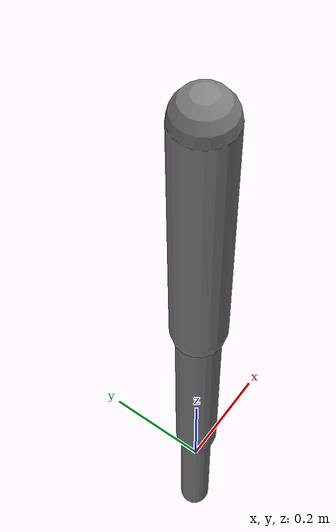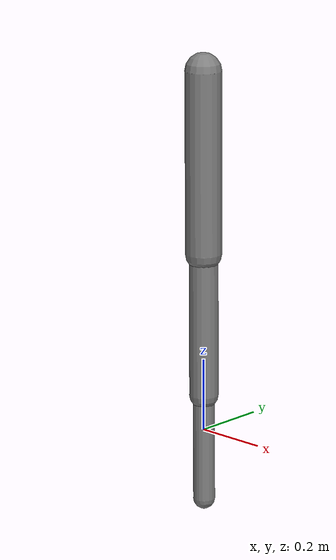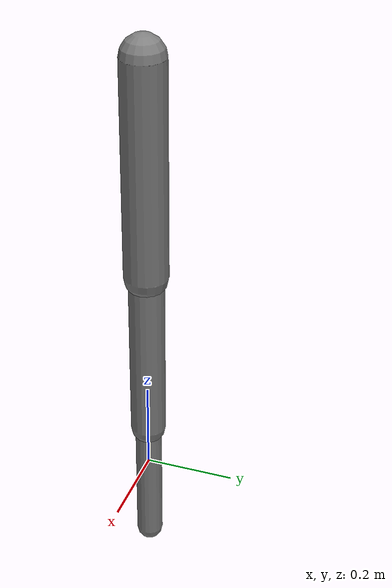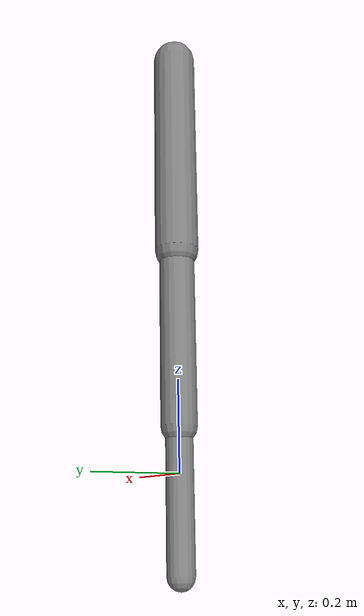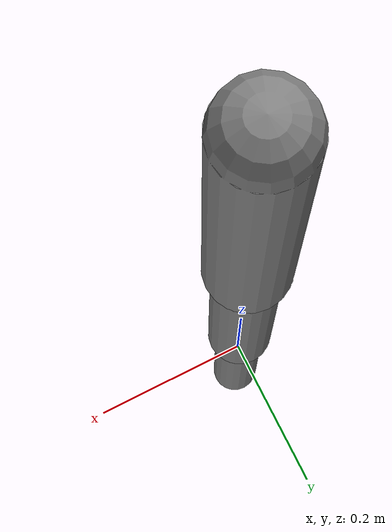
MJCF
<mujoco>
  <worldbody>
    <body name="b1" pos="0 0 1">
      <joint name="j1" type="hinge" axis="0 1 0"/>
      <geom type="capsule" size="0.05" fromto="0 0 0 0 0 -0.5"/>
      <site name="s1" pos="0 0 0"/>
      <body name="b2" pos="0 0 -0.5">
        <joint name="j2" type="hinge" axis="0 1 0"/>
        <geom type="capsule" size="0.04" fromto="0 0 0 0 0 -0.4"/>
        <site name="s2" pos="0 0 -0.2"/>
        <body name="b3" pos="0 0 -0.4">
          <joint name="j3" type="hinge" axis="0 1 0"/>
          <geom type="capsule" size="0.03" fromto="0 0 0 0 0 -0.3"/>
          <site name="s3" pos="0 0 -0.15"/>
        </body>
      </body>
    </body>
  </worldbody>
  <tendon>
    <spatial name="t_multi" stiffness="100" damping="10">
      <site site="s1"/>
      <site site="s2"/>
      <site site="s3"/>
    </spatial>
  </tendon>
</mujoco>
